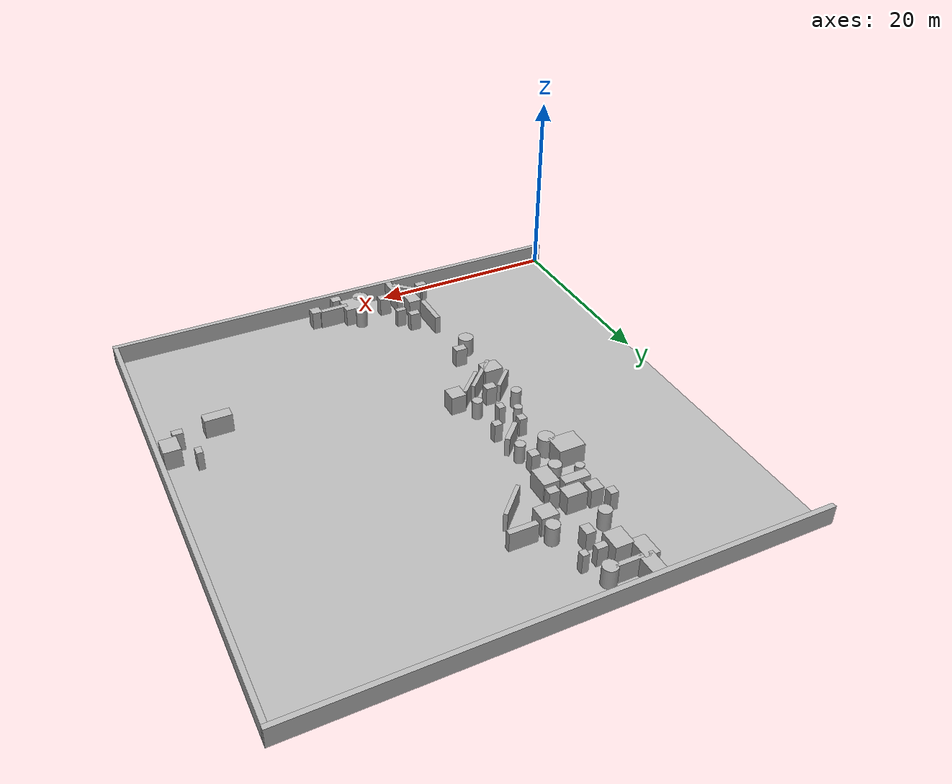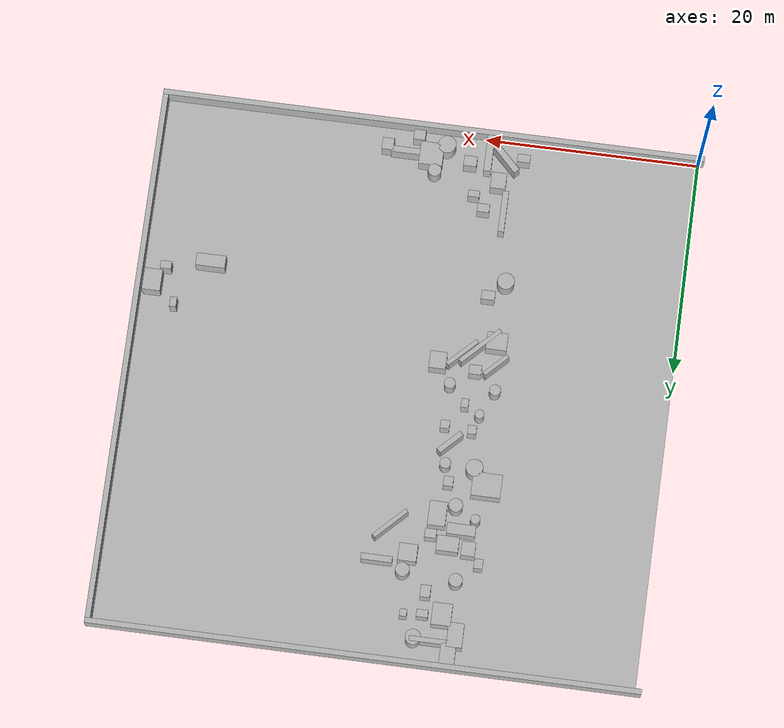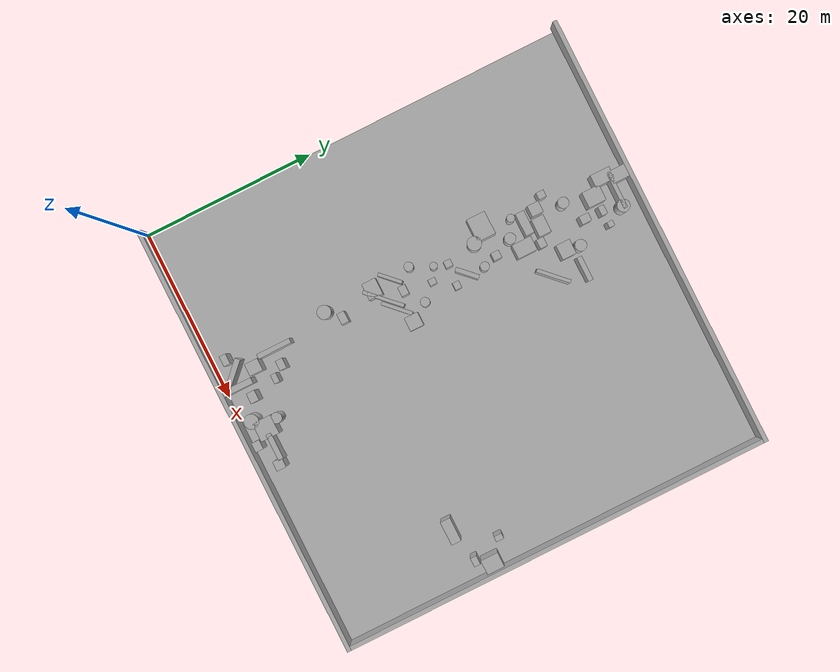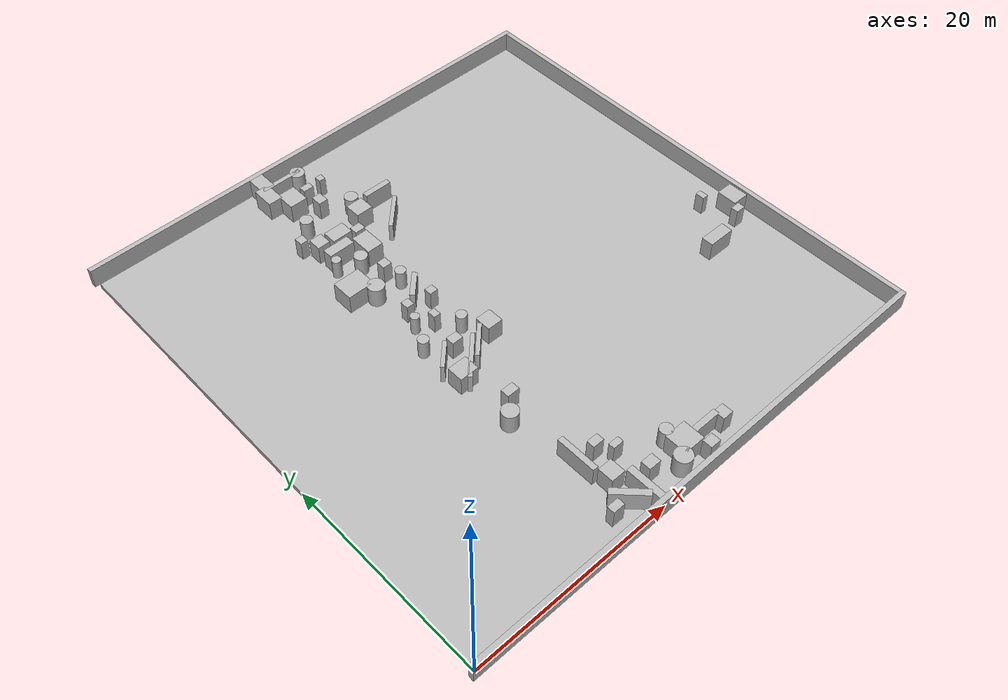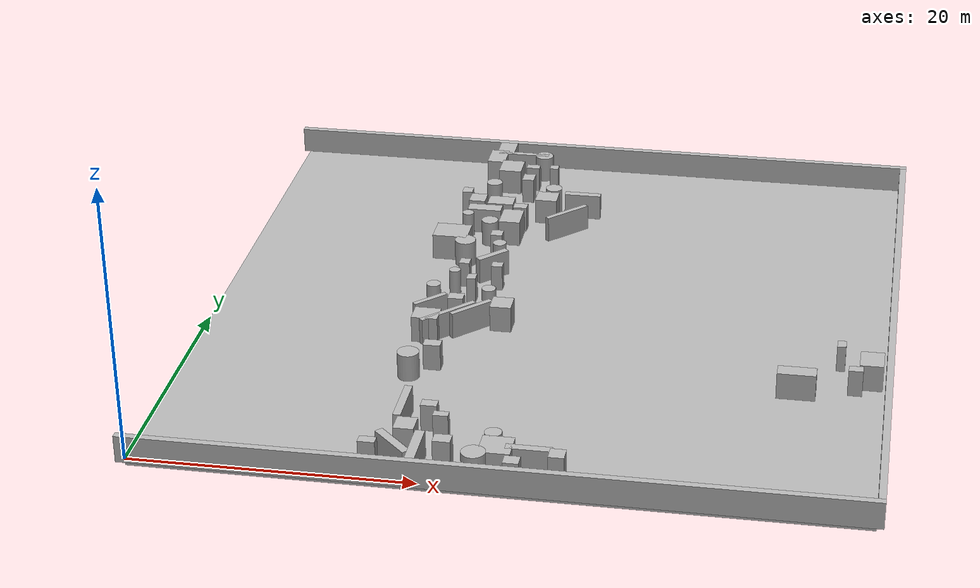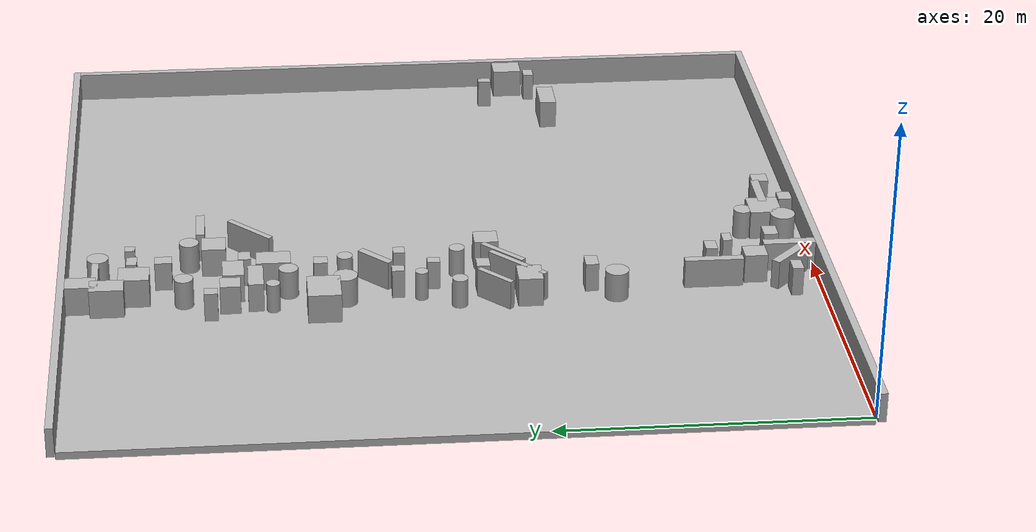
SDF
<sdf version="1.7">
 <world name="01_sparse">
  <include><uri>model://sun</uri></include>
  <model name="ground_plane_custom">
   <static>true</static>
   <pose>25.000000 25.000000 -0.250000 0 0 0</pose>
   <link name="link">
    <collision name="collision">
     <geometry><box><size>50.000000 50.000000 0.500000</size></box></geometry>
    </collision>
    <visual name="visual"><geometry><box><size>50.000000 50.000000 0.500000</size></box></geometry></visual>
   </link>
  </model>
  <model name="outer_wall_bottom">
   <static>true</static>
   <pose>25.000000 -0.250000 1.000000 0 0 0</pose>
   <link name="link">
    <collision name="collision">
     <geometry><box><size>51.000000 0.500000 2.000000</size></box></geometry>
    </collision>
    <visual name="visual"><geometry><box><size>51.000000 0.500000 2.000000</size></box></geometry></visual>
   </link>
  </model>
  <model name="outer_wall_top">
   <static>true</static>
   <pose>25.000000 50.250000 1.000000 0 0 0</pose>
   <link name="link">
    <collision name="collision">
     <geometry><box><size>51.000000 0.500000 2.000000</size></box></geometry>
    </collision>
    <visual name="visual"><geometry><box><size>51.000000 0.500000 2.000000</size></box></geometry></visual>
   </link>
  </model>
  <model name="outer_wall_right">
   <static>true</static>
   <pose>50.250000 25.000000 1.000000 0 0 0</pose>
   <link name="link">
    <collision name="collision">
     <geometry><box><size>0.500000 50.000000 2.000000</size></box></geometry>
    </collision>
    <visual name="visual"><geometry><box><size>0.500000 50.000000 2.000000</size></box></geometry></visual>
   </link>
  </model>
  <model name="obstacle_0004">
   <static>true</static>
   <pose>17.386270 48.986134 1.000000 0 0 1.570796</pose>
   <link name="link">
    <collision name="collision">
     <geometry><box><size>2.027733 1.406575 2.000000</size></box></geometry>
    </collision>
    <visual name="visual"><geometry><box><size>2.027733 1.406575 2.000000</size></box></geometry></visual>
   </link>
  </model>
  <model name="obstacle_0011">
   <static>true</static>
   <pose>18.951150 48.066115 1.000000 0 0 0.000000</pose>
   <link name="link">
    <collision name="collision">
     <geometry><box><size>4.148786 0.459837 2.000000</size></box></geometry>
    </collision>
    <visual name="visual"><geometry><box><size>4.148786 0.459837 2.000000</size></box></geometry></visual>
   </link>
  </model>
  <model name="obstacle_0014">
   <static>true</static>
   <pose>16.903474 47.277748 1.000000 0 0 1.570796</pose>
   <link name="link">
    <collision name="collision">
     <geometry><box><size>2.270105 1.446573 2.000000</size></box></geometry>
    </collision>
    <visual name="visual"><geometry><box><size>2.270105 1.446573 2.000000</size></box></geometry></visual>
   </link>
  </model>
  <model name="obstacle_0015">
   <static>true</static>
   <pose>18.355694 45.525282 1.000000 0 0 1.570796</pose>
   <link name="link">
    <collision name="collision">
     <geometry><box><size>2.057959 1.810767 2.000000</size></box></geometry>
    </collision>
    <visual name="visual"><geometry><box><size>2.057959 1.810767 2.000000</size></box></geometry></visual>
   </link>
  </model>
  <model name="obstacle_0023">
   <static>true</static>
   <pose>20.103382 43.601348 1.000000 0 0 1.570796</pose>
   <link name="link">
    <collision name="collision">
     <geometry><box><size>1.137461 0.941154 2.000000</size></box></geometry>
    </collision>
    <visual name="visual"><geometry><box><size>1.137461 0.941154 2.000000</size></box></geometry></visual>
   </link>
  </model>
  <model name="obstacle_0024">
   <static>true</static>
   <pose>26.149616 0.833209 1.000000 0 0 0.000000</pose>
   <link name="link">
    <collision name="collision">
     <geometry><box><size>1.083453 0.944038 2.000000</size></box></geometry>
    </collision>
    <visual name="visual"><geometry><box><size>1.083453 0.944038 2.000000</size></box></geometry></visual>
   </link>
  </model>
  <model name="obstacle_0029">
   <static>true</static>
   <pose>22.449243 41.884827 1.000000 0 0 0</pose>
   <link name="link">
    <collision name="collision">
     <geometry><cylinder><radius>0.657754</radius><length>2.000000</length></cylinder></geometry>
    </collision>
    <visual name="visual">
     <geometry><cylinder><radius>0.657754</radius><length>2.000000</length></cylinder></geometry>
    </visual>
   </link>
  </model>
  <model name="obstacle_0034">
   <static>true</static>
   <pose>22.157335 40.251069 1.000000 0 0 0.000000</pose>
   <link name="link">
    <collision name="collision">
     <geometry><box><size>1.724378 1.619299 2.000000</size></box></geometry>
    </collision>
    <visual name="visual"><geometry><box><size>1.724378 1.619299 2.000000</size></box></geometry></visual>
   </link>
  </model>
  <model name="obstacle_0035">
   <static>true</static>
   <pose>16.146209 24.184760 1.000000 0 0 0</pose>
   <link name="link">
    <collision name="collision">
     <geometry><cylinder><radius>0.527531</radius><length>2.000000</length></cylinder></geometry>
    </collision>
    <visual name="visual">
     <geometry><cylinder><radius>0.527531</radius><length>2.000000</length></cylinder></geometry>
    </visual>
   </link>
  </model>
  <model name="obstacle_0036">
   <static>true</static>
   <pose>20.133096 45.679445 1.000000 0 0 1.570796</pose>
   <link name="link">
    <collision name="collision">
     <geometry><box><size>0.694280 1.064228 2.000000</size></box></geometry>
    </collision>
    <visual name="visual"><geometry><box><size>0.694280 1.064228 2.000000</size></box></geometry></visual>
   </link>
  </model>
  <model name="obstacle_0037">
   <static>true</static>
   <pose>17.495579 42.251864 1.000000 0 0 0</pose>
   <link name="link">
    <collision name="collision">
     <geometry><cylinder><radius>0.629149</radius><length>2.000000</length></cylinder></geometry>
    </collision>
    <visual name="visual">
     <geometry><cylinder><radius>0.629149</radius><length>2.000000</length></cylinder></geometry>
    </visual>
   </link>
  </model>
  <model name="obstacle_0040">
   <static>true</static>
   <pose>27.036963 2.467667 1.000000 0 0 0.000000</pose>
   <link name="link">
    <collision name="collision">
     <geometry><box><size>3.162600 0.591078 2.000000</size></box></geometry>
    </collision>
    <visual name="visual"><geometry><box><size>3.162600 0.591078 2.000000</size></box></geometry></visual>
   </link>
  </model>
  <model name="obstacle_0041">
   <static>true</static>
   <pose>18.321892 4.285388 1.000000 0 0 1.570796</pose>
   <link name="link">
    <collision name="collision">
     <geometry><box><size>1.542360 1.423658 2.000000</size></box></geometry>
    </collision>
    <visual name="visual"><geometry><box><size>1.542360 1.423658 2.000000</size></box></geometry></visual>
   </link>
  </model>
  <model name="obstacle_0042">
   <static>true</static>
   <pose>16.361484 21.816547 1.000000 0 0 0.785398</pose>
   <link name="link">
    <collision name="collision">
     <geometry><box><size>2.806266 0.389773 2.000000</size></box></geometry>
    </collision>
    <visual name="visual"><geometry><box><size>2.806266 0.389773 2.000000</size></box></geometry></visual>
   </link>
  </model>
  <model name="obstacle_0053">
   <static>true</static>
   <pose>23.496222 1.429400 1.000000 0 0 0</pose>
   <link name="link">
    <collision name="collision">
     <geometry><cylinder><radius>0.839813</radius><length>2.000000</length></cylinder></geometry>
    </collision>
    <visual name="visual">
     <geometry><cylinder><radius>0.839813</radius><length>2.000000</length></cylinder></geometry>
    </visual>
   </link>
  </model>
  <model name="obstacle_0055">
   <static>true</static>
   <pose>17.285315 26.620817 1.000000 0 0 0</pose>
   <link name="link">
    <collision name="collision">
     <geometry><cylinder><radius>0.430735</radius><length>2.000000</length></cylinder></geometry>
    </collision>
    <visual name="visual">
     <geometry><cylinder><radius>0.430735</radius><length>2.000000</length></cylinder></geometry>
    </visual>
   </link>
  </model>
  <model name="obstacle_0056">
   <static>true</static>
   <pose>48.952449 17.851241 1.000000 0 0 1.570796</pose>
   <link name="link">
    <collision name="collision">
     <geometry><box><size>2.046637 1.692496 2.000000</size></box></geometry>
    </collision>
    <visual name="visual"><geometry><box><size>2.046637 1.692496 2.000000</size></box></geometry></visual>
   </link>
  </model>
  <model name="obstacle_0057">
   <static>true</static>
   <pose>17.108356 31.658790 1.000000 0 0 0</pose>
   <link name="link">
    <collision name="collision">
     <geometry><cylinder><radius>0.802575</radius><length>2.000000</length></cylinder></geometry>
    </collision>
    <visual name="visual">
     <geometry><cylinder><radius>0.802575</radius><length>2.000000</length></cylinder></geometry>
    </visual>
   </link>
  </model>
  <model name="obstacle_0058">
   <static>true</static>
   <pose>18.191600 22.501385 1.000000 0 0 1.570796</pose>
   <link name="link">
    <collision name="collision">
     <geometry><box><size>0.884977 1.142067 2.000000</size></box></geometry>
    </collision>
    <visual name="visual"><geometry><box><size>0.884977 1.142067 2.000000</size></box></geometry></visual>
   </link>
  </model>
  <model name="obstacle_0059">
   <static>true</static>
   <pose>20.695165 47.929834 1.000000 0 0 0</pose>
   <link name="link">
    <collision name="collision">
     <geometry><cylinder><radius>0.722221</radius><length>2.000000</length></cylinder></geometry>
    </collision>
    <visual name="visual">
     <geometry><cylinder><radius>0.722221</radius><length>2.000000</length></cylinder></geometry>
    </visual>
   </link>
  </model>
  <model name="obstacle_0062">
   <static>true</static>
   <pose>15.636832 40.487611 1.000000 0 0 0.000000</pose>
   <link name="link">
    <collision name="collision">
     <geometry><box><size>0.810147 0.891399 2.000000</size></box></geometry>
    </collision>
    <visual name="visual"><geometry><box><size>0.810147 0.891399 2.000000</size></box></geometry></visual>
   </link>
  </model>
  <model name="obstacle_0063">
   <static>true</static>
   <pose>17.775412 28.157682 1.000000 0 0 1.570796</pose>
   <link name="link">
    <collision name="collision">
     <geometry><box><size>0.825408 0.789477 2.000000</size></box></geometry>
    </collision>
    <visual name="visual"><geometry><box><size>0.825408 0.789477 2.000000</size></box></geometry></visual>
   </link>
  </model>
  <model name="obstacle_0064">
   <static>true</static>
   <pose>19.626424 29.543788 1.000000 0 0 0.785398</pose>
   <link name="link">
    <collision name="collision">
     <geometry><box><size>2.697046 0.499648 2.000000</size></box></geometry>
    </collision>
    <visual name="visual"><geometry><box><size>2.697046 0.499648 2.000000</size></box></geometry></visual>
   </link>
  </model>
  <model name="obstacle_0065">
   <static>true</static>
   <pose>19.927315 36.322674 1.000000 0 0 1.570796</pose>
   <link name="link">
    <collision name="collision">
     <geometry><box><size>2.292304 1.638937 2.000000</size></box></geometry>
    </collision>
    <visual name="visual"><geometry><box><size>2.292304 1.638937 2.000000</size></box></geometry></visual>
   </link>
  </model>
  <model name="obstacle_0066">
   <static>true</static>
   <pose>24.842789 2.496607 1.000000 0 0 0.000000</pose>
   <link name="link">
    <collision name="collision">
     <geometry><box><size>2.204999 2.170998 2.000000</size></box></geometry>
    </collision>
    <visual name="visual"><geometry><box><size>2.204999 2.170998 2.000000</size></box></geometry></visual>
   </link>
  </model>
  <model name="obstacle_0067">
   <static>true</static>
   <pose>17.591422 37.538894 1.000000 0 0 0.000000</pose>
   <link name="link">
    <collision name="collision">
     <geometry><box><size>2.641817 1.018327 2.000000</size></box></geometry>
    </collision>
    <visual name="visual"><geometry><box><size>2.641817 1.018327 2.000000</size></box></geometry></visual>
   </link>
  </model>
  <model name="obstacle_0069">
   <static>true</static>
   <pose>20.322169 38.228825 1.000000 0 0 1.570796</pose>
   <link name="link">
    <collision name="collision">
     <geometry><box><size>0.836213 1.075181 2.000000</size></box></geometry>
    </collision>
    <visual name="visual"><geometry><box><size>0.836213 1.075181 2.000000</size></box></geometry></visual>
   </link>
  </model>
  <model name="obstacle_0071">
   <static>true</static>
   <pose>19.587175 21.024866 1.000000 0 0 0.785398</pose>
   <link name="link">
    <collision name="collision">
     <geometry><box><size>3.557763 0.398359 2.000000</size></box></geometry>
    </collision>
    <visual name="visual"><geometry><box><size>3.557763 0.398359 2.000000</size></box></geometry></visual>
   </link>
  </model>
  <model name="obstacle_0072">
   <static>true</static>
   <pose>21.855872 45.824689 1.000000 0 0 0.000000</pose>
   <link name="link">
    <collision name="collision">
     <geometry><box><size>0.661084 0.682399 2.000000</size></box></geometry>
    </collision>
    <visual name="visual"><geometry><box><size>0.661084 0.682399 2.000000</size></box></geometry></visual>
   </link>
  </model>
  <model name="obstacle_0074">
   <static>true</static>
   <pose>28.990387 2.066857 1.000000 0 0 0.000000</pose>
   <link name="link">
    <collision name="collision">
     <geometry><box><size>1.097656 1.117930 2.000000</size></box></geometry>
    </collision>
    <visual name="visual"><geometry><box><size>1.097656 1.117930 2.000000</size></box></geometry></visual>
   </link>
  </model>
  <model name="obstacle_0075">
   <static>true</static>
   <pose>16.722385 39.224659 1.000000 0 0 1.570796</pose>
   <link name="link">
    <collision name="collision">
     <geometry><box><size>1.347066 1.283270 2.000000</size></box></geometry>
    </collision>
    <visual name="visual"><geometry><box><size>1.347066 1.283270 2.000000</size></box></geometry></visual>
   </link>
  </model>
  <model name="obstacle_0077">
   <static>true</static>
   <pose>16.426755 36.414651 1.000000 0 0 0</pose>
   <link name="link">
    <collision name="collision">
     <geometry><cylinder><radius>0.450265</radius><length>2.000000</length></cylinder></geometry>
    </collision>
    <visual name="visual">
     <geometry><cylinder><radius>0.450265</radius><length>2.000000</length></cylinder></geometry>
    </visual>
   </link>
  </model>
  <model name="obstacle_0078">
   <static>true</static>
   <pose>18.652876 38.999645 1.000000 0 0 1.570796</pose>
   <link name="link">
    <collision name="collision">
     <geometry><box><size>1.423043 2.050792 2.000000</size></box></geometry>
    </collision>
    <visual name="visual"><geometry><box><size>1.423043 2.050792 2.000000</size></box></geometry></visual>
   </link>
  </model>
  <model name="obstacle_0079">
   <static>true</static>
   <pose>15.799918 33.116240 1.000000 0 0 0.000000</pose>
   <link name="link">
    <collision name="collision">
     <geometry><box><size>2.712862 2.199324 2.000000</size></box></geometry>
    </collision>
    <visual name="visual"><geometry><box><size>2.712862 2.199324 2.000000</size></box></geometry></visual>
   </link>
  </model>
  <model name="obstacle_0080">
   <static>true</static>
   <pose>18.362474 35.358047 1.000000 0 0 0</pose>
   <link name="link">
    <collision name="collision">
     <geometry><cylinder><radius>0.645710</radius><length>2.000000</length></cylinder></geometry>
    </collision>
    <visual name="visual">
     <geometry><cylinder><radius>0.645710</radius><length>2.000000</length></cylinder></geometry>
    </visual>
   </link>
  </model>
  <model name="obstacle_0081">
   <static>true</static>
   <pose>18.747861 25.748924 1.000000 0 0 0.000000</pose>
   <link name="link">
    <collision name="collision">
     <geometry><box><size>0.686759 0.831700 2.000000</size></box></geometry>
    </collision>
    <visual name="visual"><geometry><box><size>0.686759 0.831700 2.000000</size></box></geometry></visual>
   </link>
  </model>
  <model name="obstacle_0085">
   <static>true</static>
   <pose>20.365043 24.051955 1.000000 0 0 0</pose>
   <link name="link">
    <collision name="collision">
     <geometry><cylinder><radius>0.526628</radius><length>2.000000</length></cylinder></geometry>
    </collision>
    <visual name="visual">
     <geometry><cylinder><radius>0.526628</radius><length>2.000000</length></cylinder></geometry>
    </visual>
   </link>
  </model>
  <model name="obstacle_0086">
   <static>true</static>
   <pose>17.942531 1.960135 1.000000 0 0 2.356194</pose>
   <link name="link">
    <collision name="collision">
     <geometry><box><size>3.405980 0.611265 2.000000</size></box></geometry>
    </collision>
    <visual name="visual"><geometry><box><size>3.405980 0.611265 2.000000</size></box></geometry></visual>
   </link>
  </model>
  <model name="obstacle_0087">
   <static>true</static>
   <pose>21.723823 22.018958 1.000000 0 0 0.000000</pose>
   <link name="link">
    <collision name="collision">
     <geometry><box><size>1.577627 1.612147 2.000000</size></box></geometry>
    </collision>
    <visual name="visual"><geometry><box><size>1.577627 1.612147 2.000000</size></box></geometry></visual>
   </link>
  </model>
  <model name="obstacle_0088">
   <static>true</static>
   <pose>19.828422 31.566228 1.000000 0 0 0</pose>
   <link name="link">
    <collision name="collision">
     <geometry><cylinder><radius>0.517849</radius><length>2.000000</length></cylinder></geometry>
    </collision>
    <visual name="visual">
     <geometry><cylinder><radius>0.517849</radius><length>2.000000</length></cylinder></geometry>
    </visual>
   </link>
  </model>
  <model name="obstacle_0089">
   <static>true</static>
   <pose>47.886482 16.311298 1.000000 0 0 0.000000</pose>
   <link name="link">
    <collision name="collision">
     <geometry><box><size>1.026685 0.732697 2.000000</size></box></geometry>
    </collision>
    <visual name="visual"><geometry><box><size>1.026685 0.732697 2.000000</size></box></geometry></visual>
   </link>
  </model>
  <model name="obstacle_0090">
   <static>true</static>
   <pose>19.330232 33.208984 1.000000 0 0 0.000000</pose>
   <link name="link">
    <collision name="collision">
     <geometry><box><size>0.913466 0.921301 2.000000</size></box></geometry>
    </collision>
    <visual name="visual"><geometry><box><size>0.913466 0.921301 2.000000</size></box></geometry></visual>
   </link>
  </model>
  <model name="obstacle_0091">
   <static>true</static>
   <pose>16.247243 1.848269 1.000000 0 0 1.570796</pose>
   <link name="link">
    <collision name="collision">
     <geometry><box><size>0.746412 1.189327 2.000000</size></box></geometry>
    </collision>
    <visual name="visual"><geometry><box><size>0.746412 1.189327 2.000000</size></box></geometry></visual>
   </link>
  </model>
  <model name="obstacle_0094">
   <static>true</static>
   <pose>17.895611 15.320624 1.000000 0 0 0.000000</pose>
   <link name="link">
    <collision name="collision">
     <geometry><box><size>1.261371 0.868303 2.000000</size></box></geometry>
    </collision>
    <visual name="visual"><geometry><box><size>1.261371 0.868303 2.000000</size></box></geometry></visual>
   </link>
  </model>
  <model name="obstacle_0096">
   <static>true</static>
   <pose>21.156110 2.758707 1.000000 0 0 1.570796</pose>
   <link name="link">
    <collision name="collision">
     <geometry><box><size>0.979229 1.225069 2.000000</size></box></geometry>
    </collision>
    <visual name="visual"><geometry><box><size>0.979229 1.225069 2.000000</size></box></geometry></visual>
   </link>
  </model>
  <model name="obstacle_0097">
   <static>true</static>
   <pose>16.442162 13.787452 1.000000 0 0 0</pose>
   <link name="link">
    <collision name="collision">
     <geometry><cylinder><radius>0.790886</radius><length>2.000000</length></cylinder></geometry>
    </collision>
    <visual name="visual">
     <geometry><cylinder><radius>0.790886</radius><length>2.000000</length></cylinder></geometry>
    </visual>
   </link>
  </model>
  <model name="obstacle_0099">
   <static>true</static>
   <pose>19.505730 1.751492 1.000000 0 0 1.570796</pose>
   <link name="link">
    <collision name="collision">
     <geometry><box><size>3.502985 0.686241 2.000000</size></box></geometry>
    </collision>
    <visual name="visual"><geometry><box><size>3.502985 0.686241 2.000000</size></box></geometry></visual>
   </link>
  </model>
  <model name="obstacle_0100">
   <static>true</static>
   <pose>18.025504 20.182095 1.000000 0 0 0.785398</pose>
   <link name="link">
    <collision name="collision">
     <geometry><box><size>4.743390 0.401466 2.000000</size></box></geometry>
    </collision>
    <visual name="visual"><geometry><box><size>4.743390 0.401466 2.000000</size></box></geometry></visual>
   </link>
  </model>
  <model name="obstacle_0101">
   <static>true</static>
   <pose>24.355564 4.039753 1.000000 0 0 0</pose>
   <link name="link">
    <collision name="collision">
     <geometry><cylinder><radius>0.614380</radius><length>2.000000</length></cylinder></geometry>
    </collision>
    <visual name="visual">
     <geometry><cylinder><radius>0.614380</radius><length>2.000000</length></cylinder></geometry>
    </visual>
   </link>
  </model>
  <model name="obstacle_0104">
   <static>true</static>
   <pose>20.445325 5.835400 1.000000 0 0 1.570796</pose>
   <link name="link">
    <collision name="collision">
     <geometry><box><size>0.619209 1.062261 2.000000</size></box></geometry>
    </collision>
    <visual name="visual"><geometry><box><size>0.619209 1.062261 2.000000</size></box></geometry></visual>
   </link>
  </model>
  <model name="obstacle_0106">
   <static>true</static>
   <pose>16.546882 19.563827 1.000000 0 0 1.570796</pose>
   <link name="link">
    <collision name="collision">
     <geometry><box><size>1.633679 1.932459 2.000000</size></box></geometry>
    </collision>
    <visual name="visual"><geometry><box><size>1.633679 1.932459 2.000000</size></box></geometry></visual>
   </link>
  </model>
  <model name="obstacle_0110">
   <static>true</static>
   <pose>43.822446 15.367092 1.000000 0 0 0.000000</pose>
   <link name="link">
    <collision name="collision">
     <geometry><box><size>2.747362 1.173539 2.000000</size></box></geometry>
    </collision>
    <visual name="visual"><geometry><box><size>2.747362 1.173539 2.000000</size></box></geometry></visual>
   </link>
  </model>
  <model name="obstacle_0111">
   <static>true</static>
   <pose>24.917045 41.128159 1.000000 0 0 0.000000</pose>
   <link name="link">
    <collision name="collision">
     <geometry><box><size>2.861614 0.579993 2.000000</size></box></geometry>
    </collision>
    <visual name="visual"><geometry><box><size>2.861614 0.579993 2.000000</size></box></geometry></visual>
   </link>
  </model>
  <model name="obstacle_0113">
   <static>true</static>
   <pose>20.311060 27.957929 1.000000 0 0 0.000000</pose>
   <link name="link">
    <collision name="collision">
     <geometry><box><size>0.843935 0.774054 2.000000</size></box></geometry>
    </collision>
    <visual name="visual"><geometry><box><size>0.843935 0.774054 2.000000</size></box></geometry></visual>
   </link>
  </model>
  <model name="obstacle_0114">
   <static>true</static>
   <pose>24.106503 37.778446 1.000000 0 0 0.785398</pose>
   <link name="link">
    <collision name="collision">
     <geometry><box><size>3.875231 0.403955 2.000000</size></box></geometry>
    </collision>
    <visual name="visual"><geometry><box><size>3.875231 0.403955 2.000000</size></box></geometry></visual>
   </link>
  </model>
  <model name="obstacle_0116">
   <static>true</static>
   <pose>19.392237 7.083402 1.000000 0 0 0.000000</pose>
   <link name="link">
    <collision name="collision">
     <geometry><box><size>1.145550 0.798474 2.000000</size></box></geometry>
    </collision>
    <visual name="visual"><geometry><box><size>1.145550 0.798474 2.000000</size></box></geometry></visual>
   </link>
  </model>
  <model name="obstacle_0117">
   <static>true</static>
   <pose>17.509640 7.167269 1.000000 0 0 1.570796</pose>
   <link name="link">
    <collision name="collision">
     <geometry><box><size>3.930766 0.561844 2.000000</size></box></geometry>
    </collision>
    <visual name="visual"><geometry><box><size>3.930766 0.561844 2.000000</size></box></geometry></visual>
   </link>
  </model>
  <model name="obstacle_0118">
   <static>true</static>
   <pose>46.733482 19.719158 1.000000 0 0 1.570796</pose>
   <link name="link">
    <collision name="collision">
     <geometry><box><size>0.916302 0.623711 2.000000</size></box></geometry>
    </collision>
    <visual name="visual"><geometry><box><size>0.916302 0.623711 2.000000</size></box></geometry></visual>
   </link>
  </model>
 </world>
</sdf>
